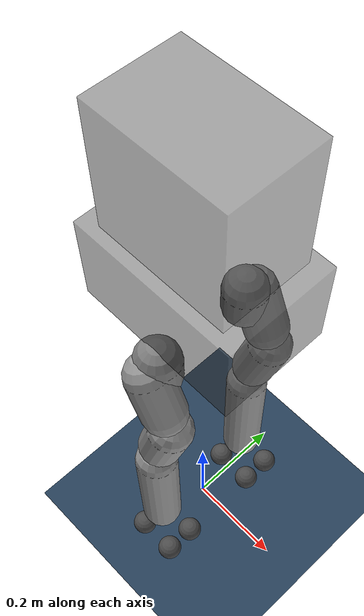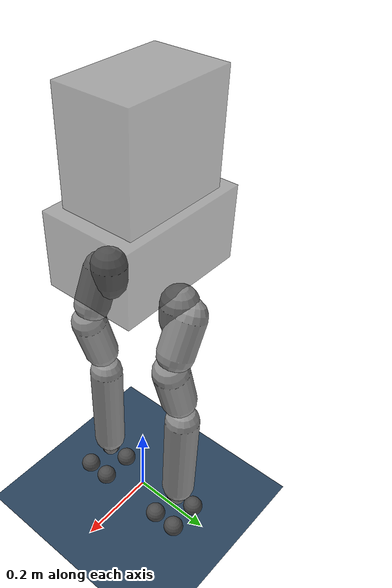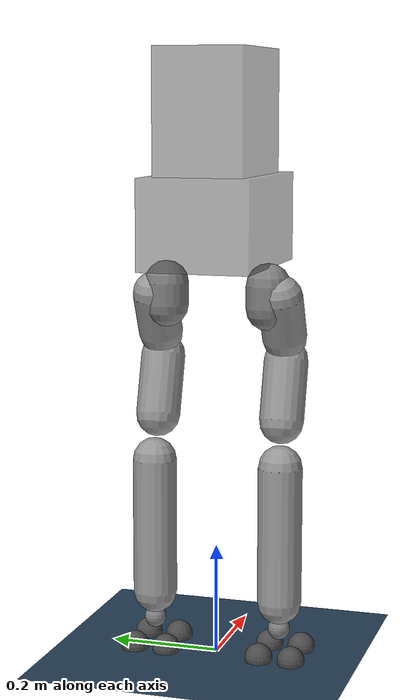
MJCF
<mujoco model="g1_12dof">
  <compiler angle="degree"/>

  <option timestep="0.002" integrator="RK4"/>

  <default>
    <joint damping="1" armature="0.01" frictionloss="0.1" limited="true"/>
    <geom conaffinity="1" condim="3" contype="1" friction="0.9 0.2 0.2"/>
    <motor ctrllimited="true" ctrlrange="-1 1"/>
  </default>

  <asset>
    <texture type="skybox" builtin="gradient" rgb1="0.3 0.5 0.7" rgb2="0.0 0.0 0.0" width="512" height="512"/>
    <texture name="texplane" type="2d" builtin="checker" rgb1="0.2 0.3 0.4" rgb2="0.1 0.2 0.3" width="512" height="512" mark="cross" markrgb="1 1 1"/>
    <material name="matplane" reflectance="0.3" texture="texplane" texrepeat="1 1" texuniform="true"/>
  </asset>

  <worldbody>
    <light cutoff="100" diffuse="1 1 1" dir="-1 0 -1.5" directional="true" exponent="1" pos="0 0 1.3" specular="0.1 0.1 0.1"/>
    <geom name="floor" pos="0 0 0" size="40 40 0.125" type="plane" material="matplane" condim="3"/>

    <body name="pelvis" pos="0 0 0.793">
      <inertial pos="0.0144905 0.000151462 0.144068" quat="0.999881 -0.000505543 -0.0154276 0.000328408" mass="17.7349" diaginertia="0.552723 0.454092 0.211762"/>
      <freejoint name="root"/>

      <!-- Pelvis collision geometry -->
      <geom name="pelvis_geom" type="box" size="0.15 0.1 0.08" pos="0 0 0" rgba="0.3 0.3 0.3 0.5"/>
      <geom name="torso_geom" type="box" size="0.12 0.08 0.15" pos="0 0 0.15" rgba="0.3 0.3 0.3 0.5"/>

      <!-- LEFT LEG -->
      <body name="left_hip_pitch_link" pos="0 0.064452 -0.1027">
        <inertial pos="0.002741 0.047791 -0.02606" quat="0.954862 0.293964 0.0302556 0.030122" mass="1.35" diaginertia="0.00181517 0.00153422 0.00116212"/>
        <joint name="left_hip_pitch_joint" pos="0 0 0" axis="0 1 0" range="-145 165" damping="1" armature="0.01"/>
        <geom name="left_hip_pitch_geom" type="capsule" fromto="0 0.03 -0.01 0 0.03 -0.05" size="0.04" rgba="0.5 0.5 0.5 1"/>

        <body name="left_hip_roll_link" pos="0 0.052 -0.030465" quat="0.996179 0 -0.0873386 0">
          <inertial pos="0.029812 -0.001045 -0.087934" quat="0.977808 -1.97119e-05 0.205576 -0.0403793" mass="1.52" diaginertia="0.00254986 0.00241169 0.00148755"/>
          <joint name="left_hip_roll_joint" pos="0 0 0" axis="1 0 0" range="-30 170" damping="1" armature="0.01"/>
          <geom name="left_hip_roll_geom" type="capsule" fromto="0 0 0 0.02 0 -0.08" size="0.04" rgba="0.6 0.6 0.6 1"/>

          <body name="left_hip_yaw_link" pos="0.025001 0 -0.12412">
            <inertial pos="-0.057709 -0.010981 -0.15078" quat="0.600598 0.15832 0.223482 0.751181" mass="1.702" diaginertia="0.00776166 0.00717575 0.00160139"/>
            <joint name="left_hip_yaw_joint" pos="0 0 0" axis="0 0 1" range="-158 158" damping="1" armature="0.01"/>
            <geom name="left_hip_yaw_geom" type="capsule" fromto="0 0 0 -0.05 0 -0.1" size="0.04" rgba="0.6 0.6 0.6 1"/>

            <body name="left_knee_link" pos="-0.078273 0.0021489 -0.17734" quat="0.996179 0 0.0873386 0">
              <inertial pos="0.005457 0.003964 -0.12074" quat="0.923418 -0.0327699 0.0158246 0.382067" mass="1.932" diaginertia="0.0113804 0.0112778 0.00146458"/>
              <joint name="left_knee_joint" pos="0 0 0" axis="0 1 0" range="-5 165" damping="1" armature="0.01"/>
              <geom name="left_knee_geom" type="capsule" fromto="0 0 0 0 0 -0.25" size="0.04" rgba="0.6 0.6 0.6 1"/>

              <body name="left_ankle_pitch_link" pos="0 -0.0001 -0.30001">
                <inertial pos="-0.007269 0 0.011137" quat="0.603053 0.369225 0.369225 0.603053" mass="0.074" diaginertia="1.89e-05 1.40805e-05 6.9195e-06"/>
                <joint name="left_ankle_pitch_joint" pos="0 0 0" axis="0 1 0" range="-50 30" damping="0.5" armature="0.005"/>
                <geom name="left_ankle_pitch_geom" type="sphere" size="0.02" pos="0 0 0" rgba="0.5 0.5 0.5 1"/>

                <body name="left_ankle_roll_link" pos="0 0 -0.017558">
                  <inertial pos="0.026505 0 -0.016425" quat="-0.000481092 0.728482 -0.000618967 0.685065" mass="0.608" diaginertia="0.00167218 0.0016161 0.000217621"/>
                  <joint name="left_ankle_roll_joint" pos="0 0 0" axis="1 0 0" range="-15 15" damping="0.5" armature="0.005"/>
                  <!-- Foot contact points -->
                  <geom name="left_foot_1" type="sphere" size="0.025" pos="0.05 0.03 -0.03" rgba="0.3 0.3 0.3 1"/>
                  <geom name="left_foot_2" type="sphere" size="0.025" pos="0.05 -0.03 -0.03" rgba="0.3 0.3 0.3 1"/>
                  <geom name="left_foot_3" type="sphere" size="0.025" pos="-0.03 0.03 -0.03" rgba="0.3 0.3 0.3 1"/>
                  <geom name="left_foot_4" type="sphere" size="0.025" pos="-0.03 -0.03 -0.03" rgba="0.3 0.3 0.3 1"/>
                </body>
              </body>
            </body>
          </body>
        </body>
      </body>

      <!-- RIGHT LEG -->
      <body name="right_hip_pitch_link" pos="0 -0.064452 -0.1027">
        <inertial pos="0.002741 -0.047791 -0.02606" quat="0.954862 -0.293964 0.0302556 -0.030122" mass="1.35" diaginertia="0.00181517 0.00153422 0.00116212"/>
        <joint name="right_hip_pitch_joint" pos="0 0 0" axis="0 1 0" range="-145 165" damping="1" armature="0.01"/>
        <geom name="right_hip_pitch_geom" type="capsule" fromto="0 -0.03 -0.01 0 -0.03 -0.05" size="0.04" rgba="0.5 0.5 0.5 1"/>

        <body name="right_hip_roll_link" pos="0 -0.052 -0.030465" quat="0.996179 0 -0.0873386 0">
          <inertial pos="0.029812 0.001045 -0.087934" quat="0.977808 1.97119e-05 0.205576 0.0403793" mass="1.52" diaginertia="0.00254986 0.00241169 0.00148755"/>
          <joint name="right_hip_roll_joint" pos="0 0 0" axis="1 0 0" range="-170 30" damping="1" armature="0.01"/>
          <geom name="right_hip_roll_geom" type="capsule" fromto="0 0 0 0.02 0 -0.08" size="0.04" rgba="0.6 0.6 0.6 1"/>

          <body name="right_hip_yaw_link" pos="0.025001 0 -0.12412">
            <inertial pos="-0.057709 0.010981 -0.15078" quat="0.751181 0.223482 0.15832 0.600598" mass="1.702" diaginertia="0.00776166 0.00717575 0.00160139"/>
            <joint name="right_hip_yaw_joint" pos="0 0 0" axis="0 0 1" range="-158 158" damping="1" armature="0.01"/>
            <geom name="right_hip_yaw_geom" type="capsule" fromto="0 0 0 -0.05 0 -0.1" size="0.04" rgba="0.6 0.6 0.6 1"/>

            <body name="right_knee_link" pos="-0.078273 -0.0021489 -0.17734" quat="0.996179 0 0.0873386 0">
              <inertial pos="0.005457 -0.003964 -0.12074" quat="0.923439 0.0345276 0.0116333 -0.382012" mass="1.932" diaginertia="0.011374 0.0112843 0.00146452"/>
              <joint name="right_knee_joint" pos="0 0 0" axis="0 1 0" range="-5 165" damping="1" armature="0.01"/>
              <geom name="right_knee_geom" type="capsule" fromto="0 0 0 0 0 -0.25" size="0.04" rgba="0.6 0.6 0.6 1"/>

              <body name="right_ankle_pitch_link" pos="0 0.0001 -0.30001">
                <inertial pos="-0.007269 0 0.011137" quat="0.603053 0.369225 0.369225 0.603053" mass="0.074" diaginertia="1.89e-05 1.40805e-05 6.9195e-06"/>
                <joint name="right_ankle_pitch_joint" pos="0 0 0" axis="0 1 0" range="-50 30" damping="0.5" armature="0.005"/>
                <geom name="right_ankle_pitch_geom" type="sphere" size="0.02" pos="0 0 0" rgba="0.5 0.5 0.5 1"/>

                <body name="right_ankle_roll_link" pos="0 0 -0.017558">
                  <inertial pos="0.026505 0 -0.016425" quat="0.000481092 0.728482 0.000618967 0.685065" mass="0.608" diaginertia="0.00167218 0.0016161 0.000217621"/>
                  <joint name="right_ankle_roll_joint" pos="0 0 0" axis="1 0 0" range="-15 15" damping="0.5" armature="0.005"/>
                  <!-- Foot contact points -->
                  <geom name="right_foot_1" type="sphere" size="0.025" pos="0.05 0.03 -0.03" rgba="0.3 0.3 0.3 1"/>
                  <geom name="right_foot_2" type="sphere" size="0.025" pos="0.05 -0.03 -0.03" rgba="0.3 0.3 0.3 1"/>
                  <geom name="right_foot_3" type="sphere" size="0.025" pos="-0.03 0.03 -0.03" rgba="0.3 0.3 0.3 1"/>
                  <geom name="right_foot_4" type="sphere" size="0.025" pos="-0.03 -0.03 -0.03" rgba="0.3 0.3 0.3 1"/>
                </body>
              </body>
            </body>
          </body>
        </body>
      </body>
    </body>
  </worldbody>

  <actuator>
    <motor name="left_hip_pitch_joint" joint="left_hip_pitch_joint" gear="88"/>
    <motor name="left_hip_roll_joint" joint="left_hip_roll_joint" gear="139"/>
    <motor name="left_hip_yaw_joint" joint="left_hip_yaw_joint" gear="88"/>
    <motor name="left_knee_joint" joint="left_knee_joint" gear="139"/>
    <motor name="left_ankle_pitch_joint" joint="left_ankle_pitch_joint" gear="50"/>
    <motor name="left_ankle_roll_joint" joint="left_ankle_roll_joint" gear="50"/>
    <motor name="right_hip_pitch_joint" joint="right_hip_pitch_joint" gear="88"/>
    <motor name="right_hip_roll_joint" joint="right_hip_roll_joint" gear="139"/>
    <motor name="right_hip_yaw_joint" joint="right_hip_yaw_joint" gear="88"/>
    <motor name="right_knee_joint" joint="right_knee_joint" gear="139"/>
    <motor name="right_ankle_pitch_joint" joint="right_ankle_pitch_joint" gear="50"/>
    <motor name="right_ankle_roll_joint" joint="right_ankle_roll_joint" gear="50"/>
  </actuator>
</mujoco>
